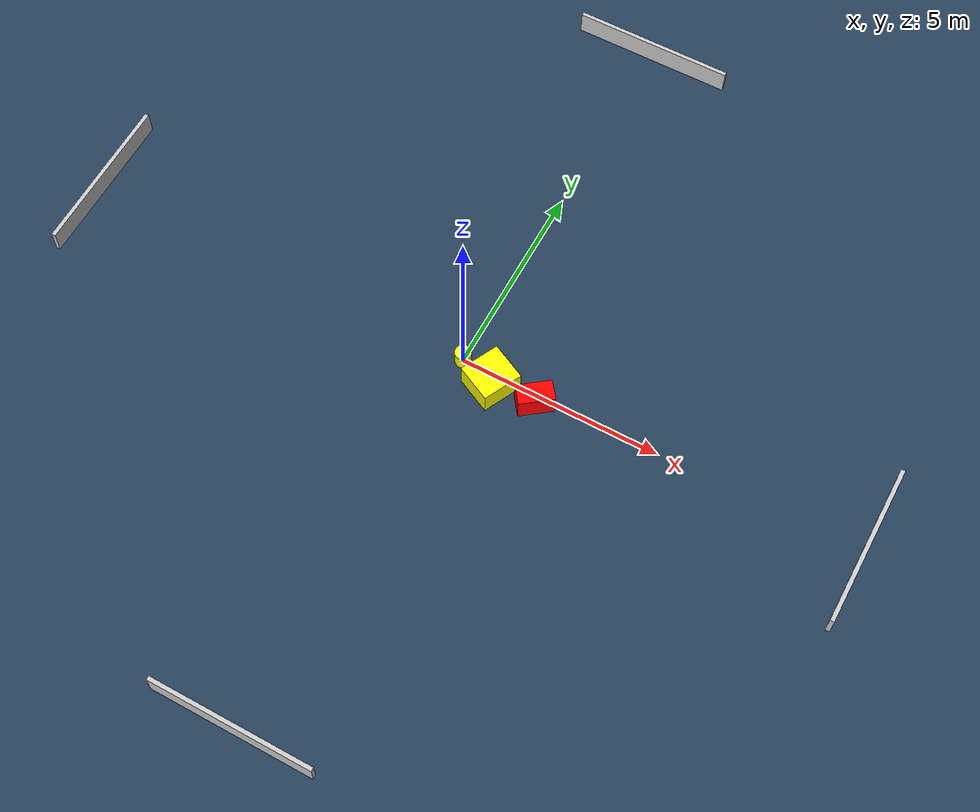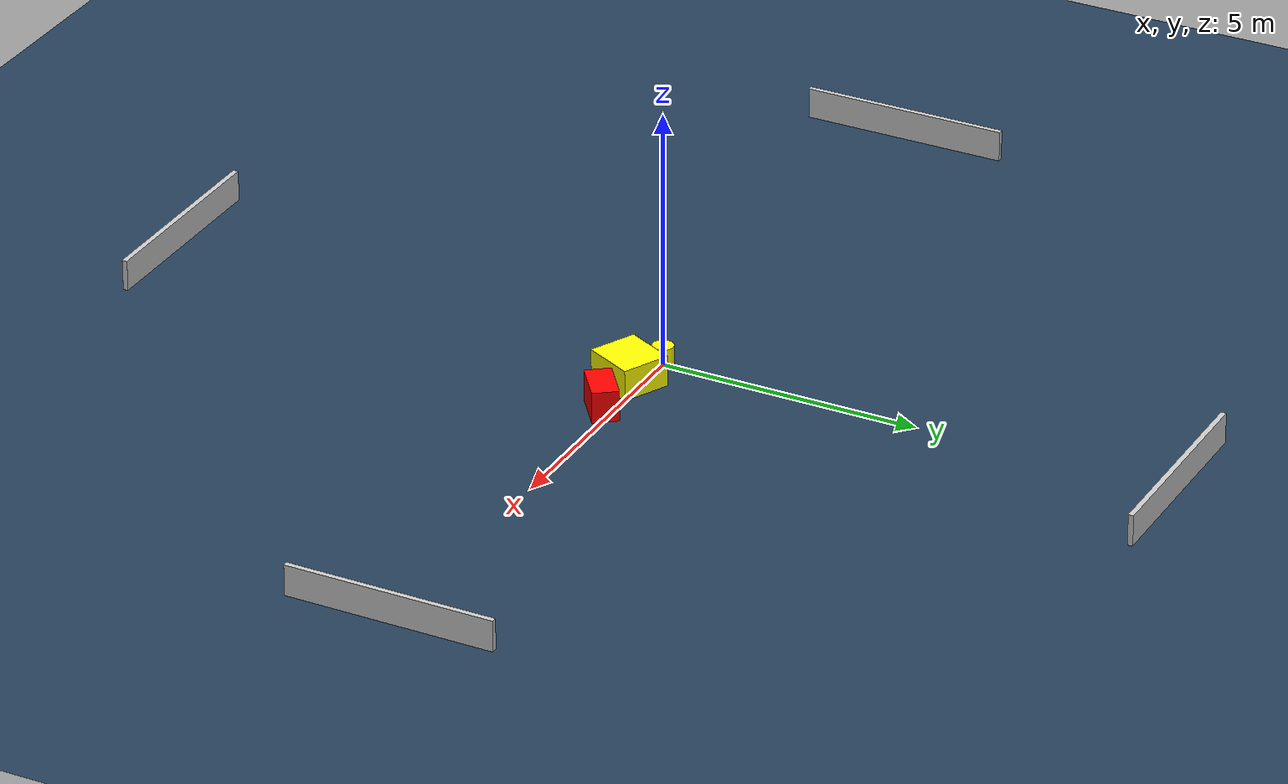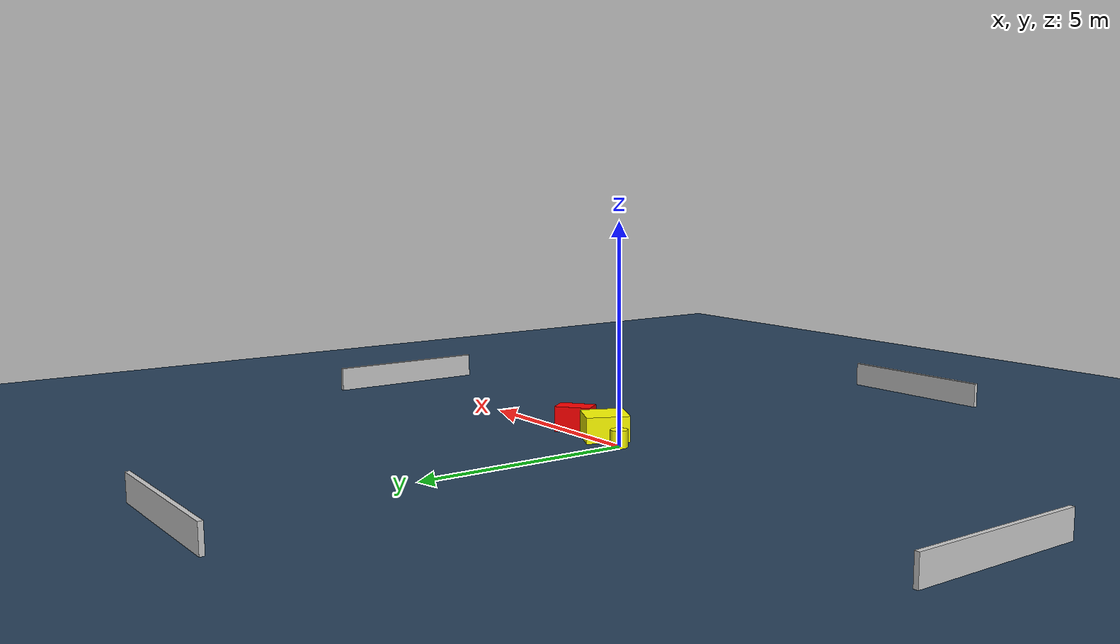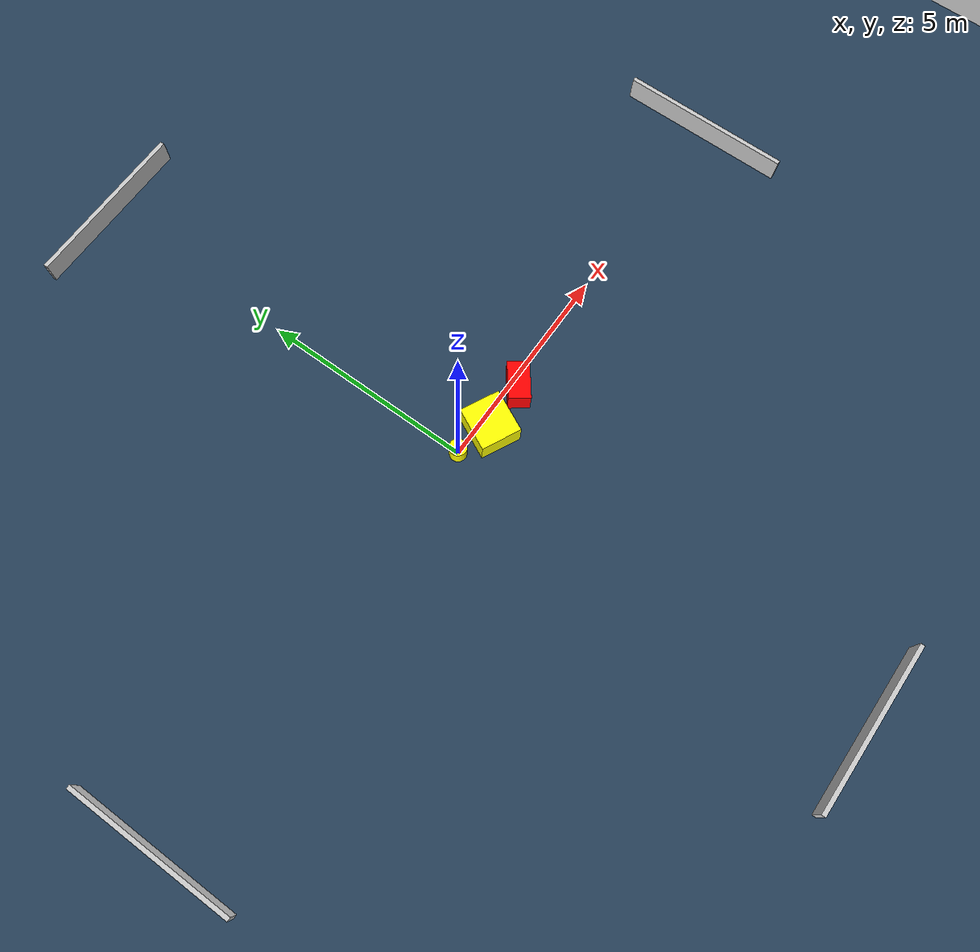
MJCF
<?xml version="1.0" ?>
<mujoco model="generated_environment">
  <option timestep="0.01" integrator="RK4" cone="elliptic"/>
  <default>
    <geom density="1"/>
  </default>
  <asset>
    <texture builtin="gradient" height="3072" name="skybox" rgb1="0.3 0.5 0.7" rgb2="0 0 0" type="skybox" width="512"/>
    <texture builtin="checker" height="300" name="groundplane" rgb1="0.2 0.3 0.4" rgb2="0.1 0.2 0.3" type="2d" width="300"/>
    <material name="groundplane" reflectance="0.2" texrepeat="5 5" texture="groundplane"/>
  </asset>
  <worldbody>
    <light dir="0 0 -1" directional="true" pos="0 0 1.5"/>
    <geom condim="3" friction="0.5 0.005 0.001" material="groundplane" name="floor" pos="0 0 0" size="0 0 0.05" type="plane"/>
    <body name="walls">
      <geom name="wall_1" condim="4" pos="-10.0 0.0 0.3" rgba="0.800000011920929 0.800000011920929 0.800000011920929 1.0" size="0.05 2.0 0.3" type="box"/>
      <geom name="wall_2" condim="4" pos="10.0 0.0 0.3" rgba="0.800000011920929 0.800000011920929 0.800000011920929 1.0" size="0.05 2.0 0.3" type="box"/>
      <geom name="wall_3" condim="4" pos="0.0 -10.0 0.3" rgba="0.800000011920929 0.800000011920929 0.800000011920929 1.0" size="2.0 0.05 0.3" type="box"/>
      <geom name="wall_4" condim="4" pos="0.0 10.0 0.3" rgba="0.800000011920929 0.800000011920929 0.800000011920929 1.0" size="2.0 0.05 0.3" type="box"/>
    </body>
    <body name="robot">
      <joint name="joint_x" type="slide" pos="0 0 0" axis="1 0 0"/>
      <joint name="joint_y" type="slide" pos="0 0 0" axis="0 1 0"/>
      <geom name="robot" type="cylinder" pos="0.0 0.0 0.2" size="0.2 0.2 0.0" mass="5.0" friction="1.0 0.005 0.0001" condim="4" rgba="1.0 1.0 0.0 1.0"/>
    </body>
    <body name="obstacle_1_movable">
      <geom name="obstacle_1_movable" condim="4" pos="0.851794766009387 -0.23938173982982447 0.3" euler="0 0 333.82321158396246" friction="0.0 0.005 0.001" rgba="1.0 1.0 0.0 1.0" size="0.471545119869646 0.5048117528710552 0.3" type="box" mass="0.1"/>
      <joint type="free"/>
    </body>
    <body name="obstacle_2_static">
      <geom name="obstacle_2_static" condim="4" pos="1.9724333779976078 -0.20382534347658388 0.3" euler="0 0 126.99038825021319" friction="0.0 0.005 0.001" rgba="1.0 0.0 0.0 1.0" size="0.24953230626705636 0.43182519876358827 0.3" type="box"/>
    </body>
  </worldbody>
  <actuator>
    <motor name="actuator_x" joint="joint_x" gear="1" ctrlrange="-1 1"/>
    <motor name="actuator_y" joint="joint_y" gear="1" ctrlrange="-1 1"/>
  </actuator>
</mujoco>
